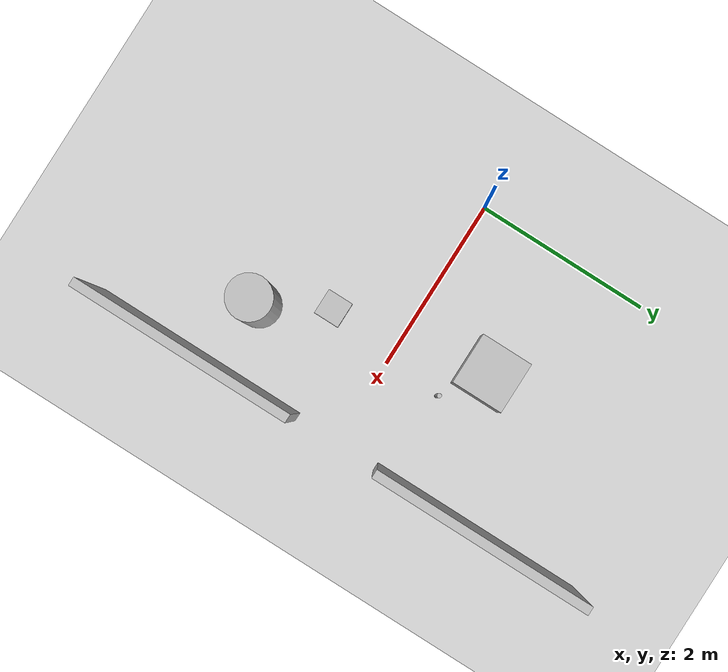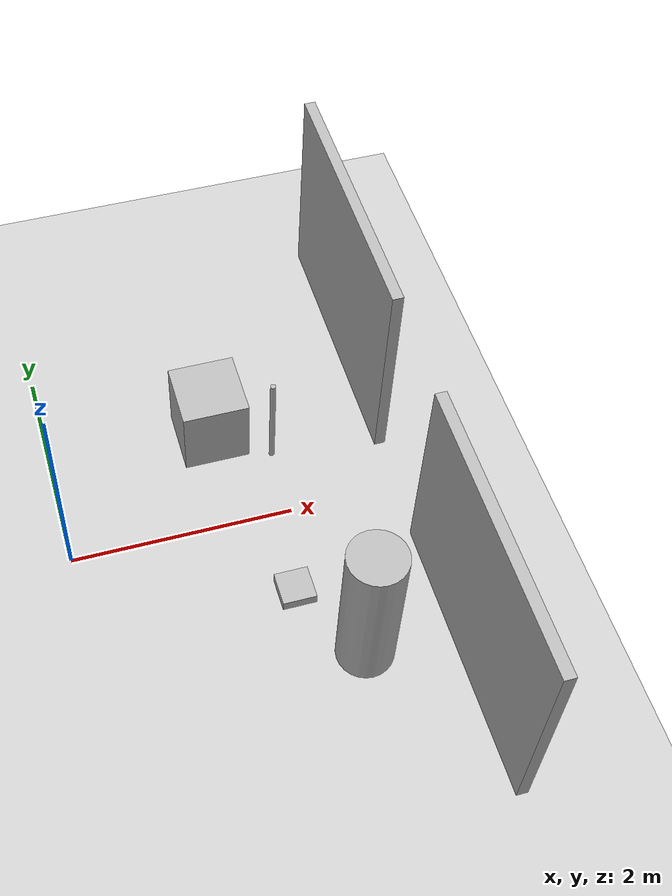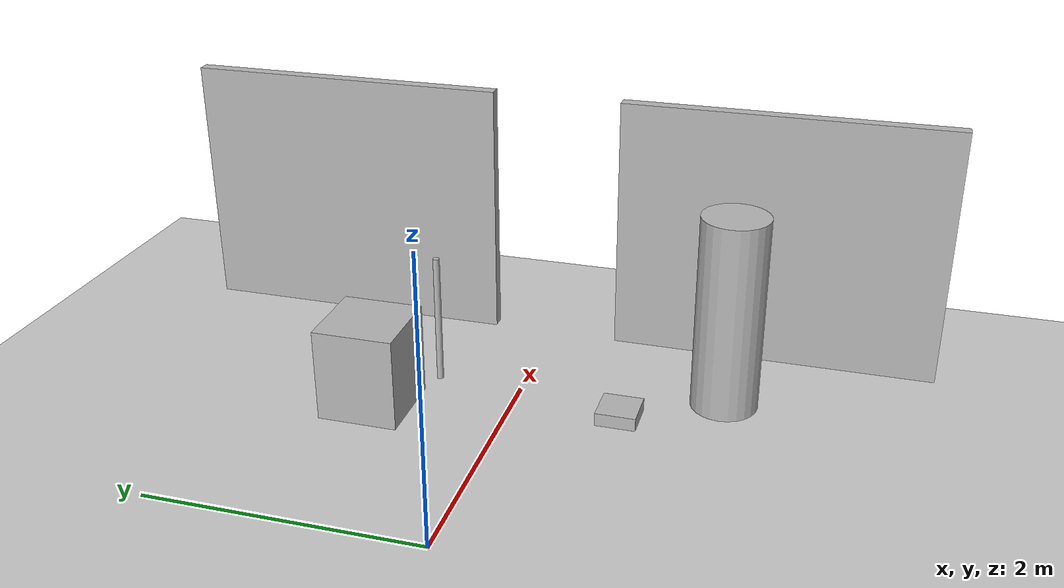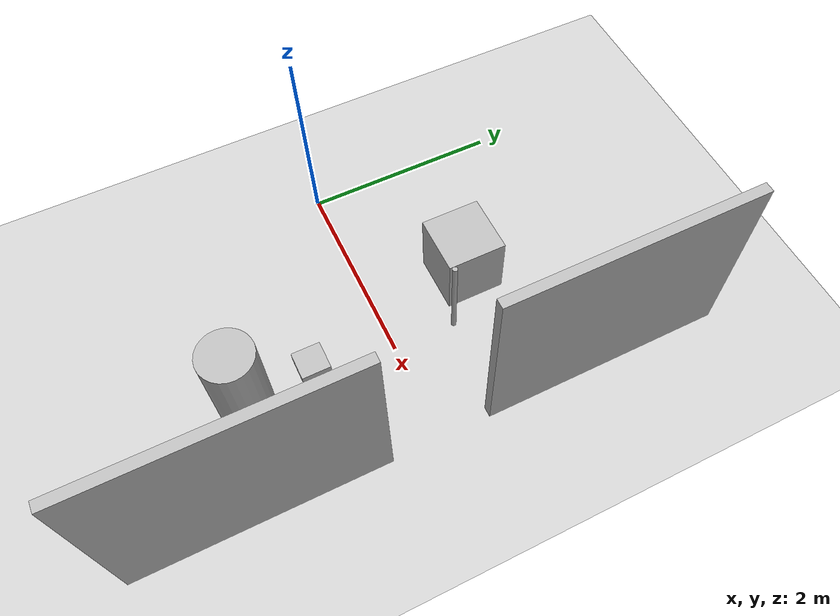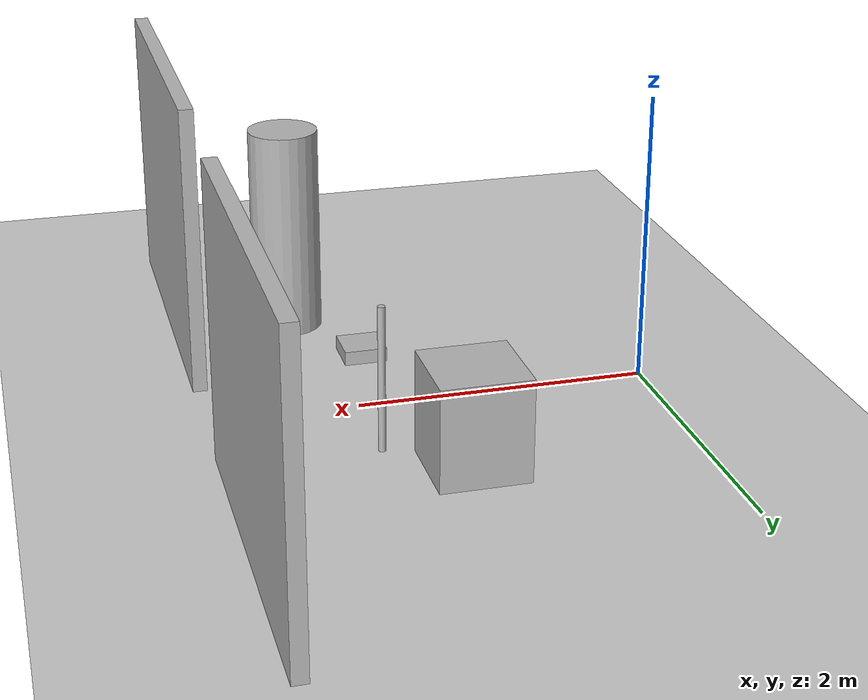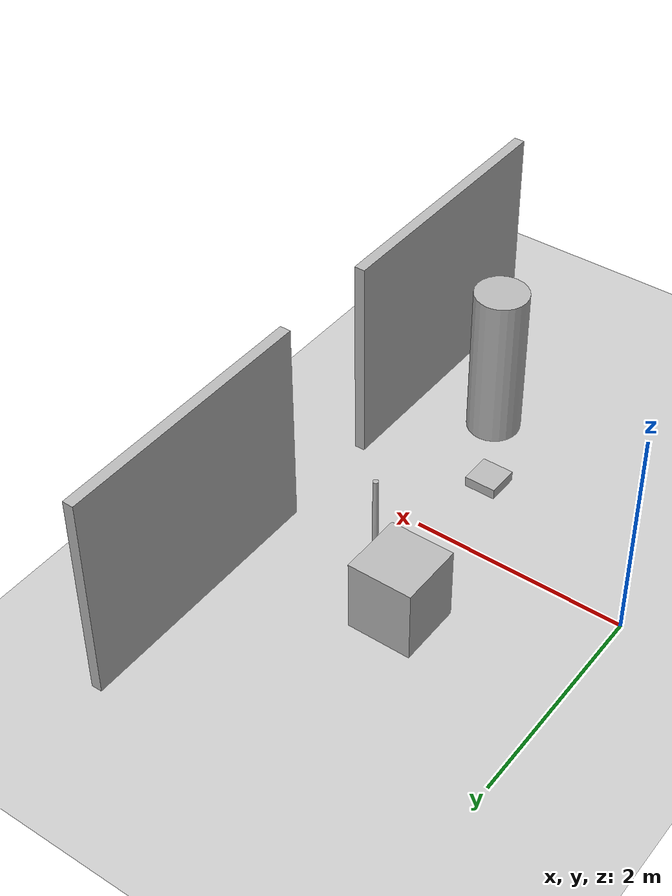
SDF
<?xml version="1.0"?>
<sdf version="1.6">
  <world name="mapping">
    <plugin name="gazebo_ros_state" filename="libgazebo_ros_state.so">
      <update_rate>20.0</update_rate>
    </plugin>

    <include><uri>model://ground_plane</uri></include>
    <include><uri>model://sun</uri></include>

    <!-- Two wall segments form a one-metre doorway on the forward route. -->
    <model name="doorway_left">
      <static>true</static>
      <pose>3 1.75 1 0 0 0</pose>
      <link name="link">
        <collision name="collision"><geometry><box><size>0.1 2.5 2</size></box></geometry></collision>
        <visual name="visual"><geometry><box><size>0.1 2.5 2</size></box></geometry></visual>
      </link>
    </model>
    <model name="doorway_right">
      <static>true</static>
      <pose>3 -1.75 1 0 0 0</pose>
      <link name="link">
        <collision name="collision"><geometry><box><size>0.1 2.5 2</size></box></geometry></collision>
        <visual name="visual"><geometry><box><size>0.1 2.5 2</size></box></geometry></visual>
      </link>
    </model>

    <model name="box_obstacle">
      <static>true</static>
      <pose>1.5 1 0.35 0 0 0</pose>
      <link name="link">
        <collision name="collision"><geometry><box><size>0.6 0.6 0.7</size></box></geometry></collision>
        <visual name="visual"><geometry><box><size>0.6 0.6 0.7</size></box></geometry></visual>
      </link>
    </model>
    <model name="low_block">
      <static>true</static>
      <pose>1.8 -0.8 0.05 0 0 0</pose>
      <link name="link">
        <collision name="collision"><geometry><box><size>0.3 0.3 0.1</size></box></geometry></collision>
        <visual name="visual"><geometry><box><size>0.3 0.3 0.1</size></box></geometry></visual>
      </link>
    </model>
    <model name="pole_obstacle">
      <static>true</static>
      <pose>2.0 0.65 0.5 0 0 0</pose>
      <link name="link">
        <collision name="collision"><geometry><cylinder><radius>0.025</radius><length>1.0</length></cylinder></geometry></collision>
        <visual name="visual"><geometry><cylinder><radius>0.025</radius><length>1.0</length></cylinder></geometry></visual>
      </link>
    </model>
    <model name="moving_dummy">
      <static>false</static>
      <pose>2.2 -1.5 0.75 0 0 0</pose>
      <link name="link">
        <inertial><mass>20</mass><inertia><ixx>4</ixx><iyy>4</iyy><izz>1</izz></inertia></inertial>
        <collision name="collision"><geometry><cylinder><radius>0.25</radius><length>1.5</length></cylinder></geometry></collision>
        <visual name="visual"><geometry><cylinder><radius>0.25</radius><length>1.5</length></cylinder></geometry></visual>
      </link>
    </model>
  </world>
</sdf>
